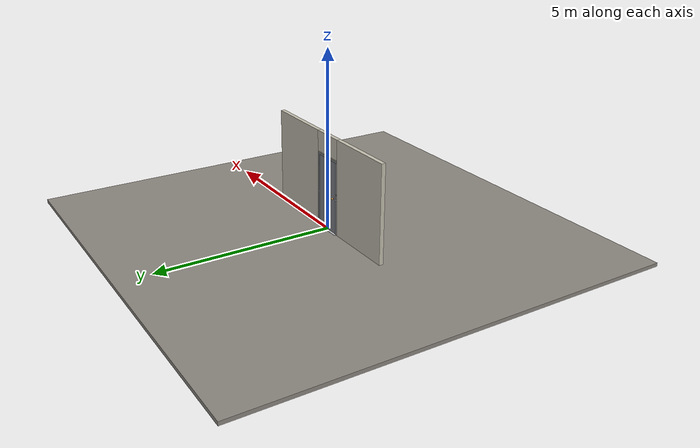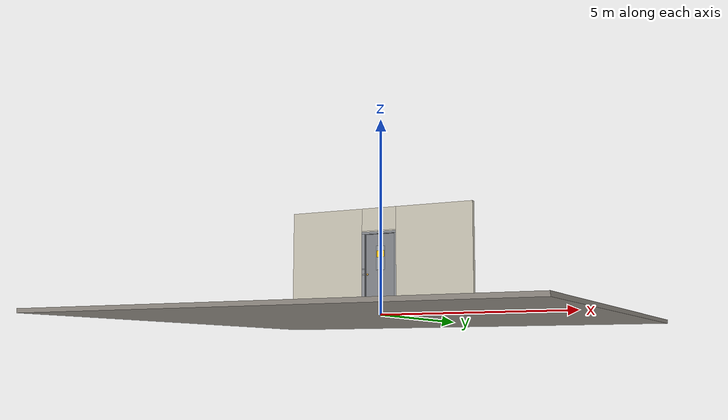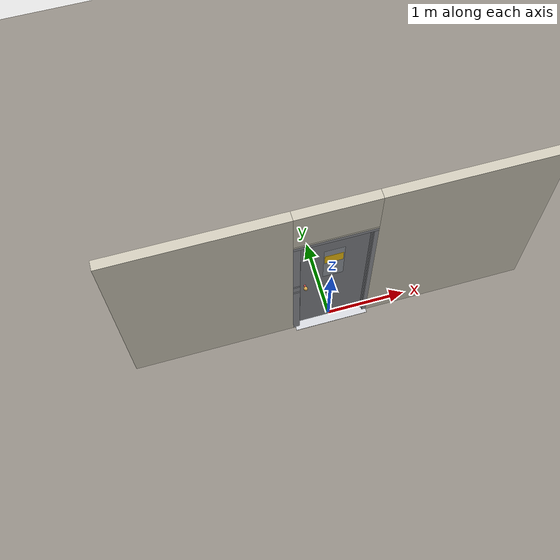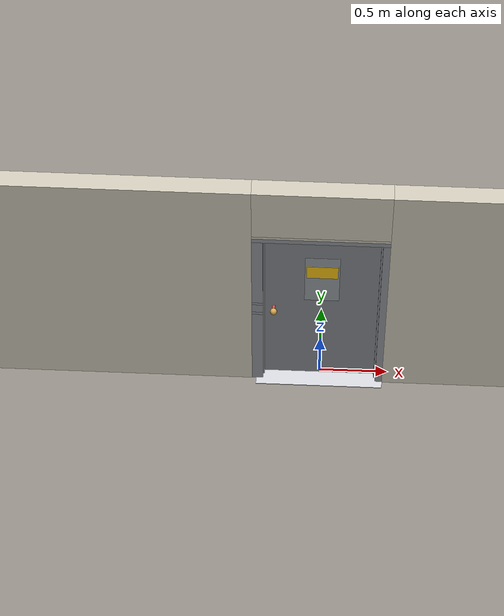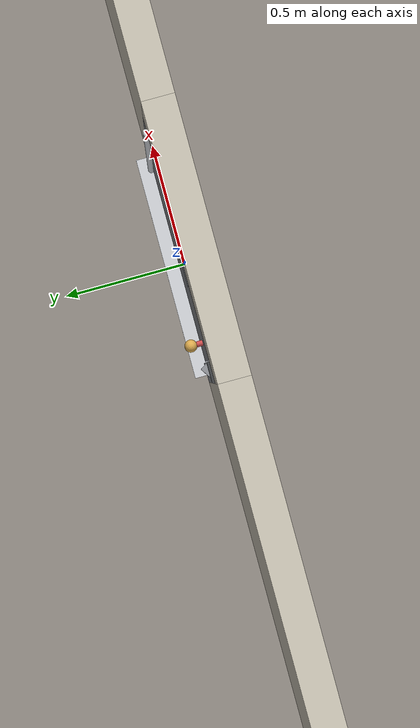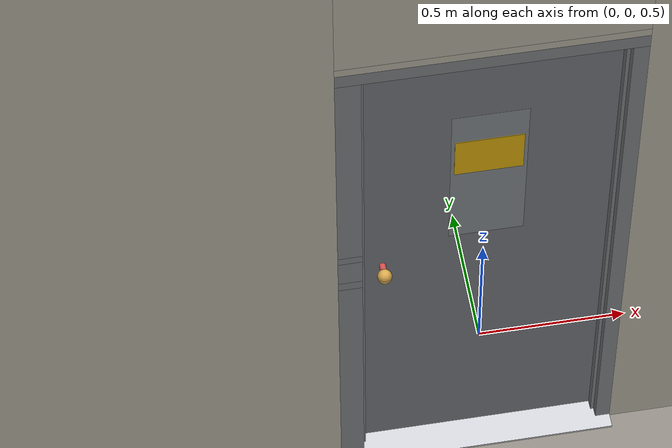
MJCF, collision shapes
<?xml version="1.0" ?>
<mujoco model="db0265_swing_single_full">
  <compiler angle="radian" meshdir="../../hardware" texturedir="../../textures" autolimits="true" inertiafromgeom="false"/>
  <option timestep="0.002" integrator="implicitfast" cone="elliptic" impratio="10" noslip_iterations="3">
    <flag multiccd="enable"/>
  </option>
  <size memory="16M"/>
  <default>
    <geom condim="4" solref="0.005 1" solimp="0.95 0.99 0.001"/>
    <joint solreflimit="0.005 1" solimplimit="0.95 0.99 0.001"/>
    <tendon solreflimit="0.005 1"/>
    <equality solref="0.002 1"/>
  </default>
  <visual>
    <headlight ambient="0.4 0.4 0.4" diffuse="0.7 0.7 0.7" specular="0.2 0.2 0.2"/>
    <quality shadowsize="4096"/>
    <map znear="0.01" zfar="60"/>
  </visual>
  <asset>
    <mesh name="cyl_face_e9e5036966" file="cyl_face_e9e5036966.obj"/>
    <mesh name="knob_d1888f6f03" file="knob_d1888f6f03.obj"/>
    <material name="mat_floor" rgba="0.55 0.53 0.5 1" specular="0.2" shininess="0.15" reflectance="0"/>
    <material name="mat_wall" rgba="0.78 0.76 0.7 1" specular="0.2" shininess="0.1" reflectance="0"/>
    <material name="mat_leaf" rgba="0.5 0.51 0.53 1" specular="0.23" shininess="0.6" reflectance="0.02"/>
    <material name="mat_glass" rgba="0.85 0.92 0.95 0.25" specular="0.2" shininess="0.95" reflectance="0.1"/>
    <material name="mat_hinge" rgba="0.65 0.66 0.68 1" specular="0.74" shininess="0.5" reflectance="0.36"/>
    <material name="mat_op_brass" rgba="0.85 0.66 0.3 1" specular="0.8" shininess="0.75" reflectance="0.4"/>
    <material name="mat_trim" rgba="0.85 0.66 0.3 1" specular="0.8" shininess="0.75" reflectance="0.4"/>
    <material name="mat_bolt" rgba="0.85 0.66 0.3 1" specular="0.8" shininess="0.75" reflectance="0.4"/>
    <material name="mat_deadbolt" rgba="0.85 0.66 0.3 1" specular="0.8" shininess="0.75" reflectance="0.4"/>
    <material name="mat_frame" rgba="0.55 0.56 0.58 1" specular="0.8" shininess="0.55" reflectance="0.4"/>
    <material name="mat_threshold" rgba="0.8 0.81 0.83 1" specular="0.8" shininess="0.6" reflectance="0.4"/>
    <material name="mat_placard" rgba="0.95 0.75 0.05 1" specular="0.2" shininess="0.5" reflectance="0"/>
    <texture name="skybox" type="skybox" builtin="gradient" rgb1="0.6 0.7 0.85" rgb2="0.9 0.92 0.95" width="256" height="256"/>
  </asset>
  <worldbody>
    <light name="sun" pos="1.5 -2.5 4" dir="-0.3 0.5 -0.8" directional="true" diffuse="0.8 0.8 0.8" specular="0.3 0.3 0.3" castshadow="true"/>
    <light name="fill" pos="-1.5 2.5 3" dir="0.3 -0.5 -0.7" directional="true" diffuse="0.35 0.35 0.4" castshadow="false"/>
    <camera name="robot_view" pos="0 -2.570688 1.734312" xyaxes="1 0 0 0 0.26963 0.962964" fovy="52"/>
    <camera name="far_view" pos="0 2.513687 1.734312" xyaxes="-1 0 0 0 -0.26963 0.962964" fovy="52"/>
    <camera name="iso" pos="-1.932062 -2.163938 2.141063" xyaxes="0.741536 -0.670913 0 0.242917 0.268487 0.932151" fovy="46"/>
    <camera name="detail_handle" pos="-0.1555 -0.8685 1.296" xyaxes="0.97561 0.219512 0 -0.070934 0.315262 0.94635" fovy="38"/>
    <geom name="floor" type="box" size="6 6 0.05" pos="0 0 -0.05" material="mat_floor" group="0" contype="1" conaffinity="1" friction="0.8 0.005 0.0001" density="2400"/>
    <geom name="wall_left" type="box" size="1.00475 0.0575 1.35" pos="-1.49525 -0.0285 1.35" material="mat_wall" group="0" contype="1" conaffinity="1" friction="0.6 0.005 0.0001" density="800"/>
    <geom name="wall_right" type="box" size="1.01975 0.0575 1.35" pos="1.48025 -0.0285 1.35" material="mat_wall" group="0" contype="1" conaffinity="1" friction="0.6 0.005 0.0001" density="800"/>
    <geom name="wall_header" type="box" size="0.4755 0.0575 0.2875" pos="-0.015 -0.0285 2.4125" material="mat_wall" group="0" contype="1" conaffinity="1" friction="0.6 0.005 0.0001" density="800"/>
    <geom name="leaf_deadbolt_strike_b" type="box" size="0.0155 0.003 0.0005" pos="-0.41 0 1.1375" quat="0.5 0.5 0.5 0.5" material="mat_deadbolt" group="1" contype="0" conaffinity="0" density="7800"/>
    <geom name="leaf_deadbolt_strike_l" type="box" size="0.003 0.0155 0.0005" pos="-0.41 -0.0125 1.156" quat="0.5 0.5 0.5 0.5" material="mat_deadbolt" group="1" contype="0" conaffinity="0" density="7800"/>
    <geom name="leaf_deadbolt_strike_t" type="box" size="0.0155 0.003 0.0005" pos="-0.41 0 1.1745" quat="0.5 0.5 0.5 0.5" material="mat_deadbolt" group="1" contype="0" conaffinity="0" density="7800"/>
    <geom name="leaf_deadbolt_strike_r" type="box" size="0.003 0.0155 0.0005" pos="-0.41 0.0125 1.156" quat="0.5 0.5 0.5 0.5" material="mat_deadbolt" group="1" contype="0" conaffinity="0" density="7800"/>
    <geom name="jamb_hinge" type="box" size="0.025 0.0575 1.0225" pos="0.4355 -0.0285 1.0225" material="mat_frame" group="0" contype="1" conaffinity="1" friction="0.6 0.005 0.0001" density="300"/>
    <geom name="strike_1016_wall_n" type="box" size="0.04 0.03825 0.0183" pos="-0.4505 -0.04775 1.016" material="mat_frame" group="0" contype="1" conaffinity="1" friction="0.6 0.005 0.0001" density="300"/>
    <geom name="strike_1016_wall_p" type="box" size="0.04 0.008 0.0183" pos="-0.4505 0.0175 1.016" material="mat_frame" group="0" contype="1" conaffinity="1" friction="0.6 0.005 0.0001" density="300"/>
    <geom name="strike_1016_ramp" type="box" size="0.04 0.018028 0.0183" pos="-0.453782 0.018312 1.016" quat="0.957092 0 0 0.289784" material="mat_frame" group="0" contype="1" conaffinity="1" friction="0.12 0.005 0.0001" density="300"/>
    <geom name="strike_1016_back" type="box" size="0.0285 0.0095 0.0183" pos="-0.462 0 1.016" material="mat_frame" group="0" contype="1" conaffinity="1" friction="0.6 0.005 0.0001" density="300"/>
    <geom name="strike_1156_wall_n" type="box" size="0.04 0.03825 0.0155" pos="-0.4505 -0.04775 1.156" material="mat_frame" group="0" contype="1" conaffinity="1" friction="0.6 0.005 0.0001" density="300"/>
    <geom name="strike_1156_wall_p" type="box" size="0.04 0.00975 0.0155" pos="-0.4505 0.01925 1.156" material="mat_frame" group="0" contype="1" conaffinity="1" friction="0.6 0.005 0.0001" density="300"/>
    <geom name="strike_1156_back" type="box" size="0.0253 0.0095 0.0155" pos="-0.4652 0 1.156" material="mat_frame" group="0" contype="1" conaffinity="1" friction="0.6 0.005 0.0001" density="300"/>
    <geom name="jamb_strike_0" type="box" size="0.04 0.0575 0.49885" pos="-0.4505 -0.0285 0.49885" material="mat_frame" group="0" contype="1" conaffinity="1" friction="0.6 0.005 0.0001" density="300"/>
    <geom name="jamb_strike_1" type="box" size="0.04 0.0575 0.0531" pos="-0.4505 -0.0285 1.0874" material="mat_frame" group="0" contype="1" conaffinity="1" friction="0.6 0.005 0.0001" density="300"/>
    <geom name="jamb_strike_2" type="box" size="0.04 0.0575 0.43675" pos="-0.4505 -0.0285 1.60825" material="mat_frame" group="0" contype="1" conaffinity="1" friction="0.6 0.005 0.0001" density="300"/>
    <geom name="jamb_head" type="box" size="0.4755 0.0575 0.025" pos="-0.015 -0.0285 2.07" material="mat_frame" group="0" contype="1" conaffinity="1" friction="0.6 0.005 0.0001" density="300"/>
    <geom name="head_stud" type="box" size="0.4755 0.0575 0.015" pos="-0.015 -0.0285 2.11" material="mat_wall" group="0" contype="1" conaffinity="1" friction="0.6 0.005 0.0001" density="500"/>
    <geom name="stop_hinge" type="box" size="0.0055 0.016 1.0225" pos="0.405 -0.0385 1.0225" material="mat_frame" group="0" contype="1" conaffinity="1" friction="0.6 0.005 0.0001" density="300"/>
    <geom name="stop_strike" type="box" size="0.0055 0.016 1.0225" pos="-0.405 -0.0385 1.0225" material="mat_frame" group="0" contype="1" conaffinity="1" friction="0.6 0.005 0.0001" density="300"/>
    <geom name="stop_head" type="box" size="0.4105 0.016 0.0055" pos="0 -0.0385 2.0395" material="mat_frame" group="0" contype="1" conaffinity="1" friction="0.6 0.005 0.0001" density="300"/>
    <geom name="threshold" type="box" size="0.4605 0.1075 0.004" pos="0 -0.0285 0.004" material="mat_threshold" group="0" contype="1" conaffinity="1" friction="0.6 0.005 0.0001" density="2700"/>
    <site name="approach_point" pos="0 -1.5 0" quat="1 0 0 0" size="0.05" rgba="0.2 0.9 0.2 0.5" group="4"/>
    <site name="goal_point" pos="0 1.5 0" quat="1 0 0 0" size="0.05" rgba="0.2 0.9 0.2 0.5" group="4"/>
    <site name="door_plane_center" pos="0 0 1.0225" quat="1 0 0 0" size="0.02" rgba="0.2 0.9 0.2 0.5" group="4"/>
    <body name="leaf" pos="0.4105 0 0">
      <inertial pos="-0.391262 0.001372 1.025798" mass="69.250184" quat="0.497776 0.502047 -0.497954 0.502204" diaginertia="4.166645604 23.766577762 27.906861175"/>
      <joint name="leaf_hinge" type="hinge" axis="0 0 -1" pos="-0.003 0.029 0" limited="true" range="0 2.443461" damping="0.210326" frictionloss="1.656006" armature="0.02"/>
      <geom name="leaf_slab" type="box" size="0.4065 0.022 1.016" pos="-0.4095 0 1.025" material="mat_leaf" group="0" contype="1" conaffinity="1" friction="0.45 0.005 0.0001" density="1"/>
      <geom name="leaf_glass_0" type="box" size="0.12195 0.0228 0.3048" pos="-0.4095 0 1.4314" material="mat_glass" group="1" contype="0" conaffinity="0" density="1"/>
      <geom name="hinge_continuous" type="cylinder" size="0.0136 1.006" pos="-0.003 0.029 1.025" material="mat_hinge" group="1" contype="0" conaffinity="0" density="2700"/>
      <geom name="leaf_latch_bolt_faceplate" type="box" size="0.0006 0.014 0.0283" pos="-0.8154 0 1.016" material="mat_bolt" group="1" contype="0" conaffinity="0" density="8500"/>
      <geom name="leaf_deadbolt_faceplate" type="box" size="0.0006 0.014 0.0245" pos="-0.8154 0 1.156" material="mat_deadbolt" group="1" contype="0" conaffinity="0" density="8500"/>
      <geom name="leaf_deadbolt_cylinder_face" type="mesh" mesh="cyl_face_e9e5036966" pos="-0.751 0.022 1.156" quat="0 0 0.707107 0.707107" material="mat_deadbolt" group="1" contype="0" conaffinity="0" density="7100"/>
      <geom name="warning_placard" type="box" size="0.11 0.001 0.08" pos="-0.4095 -0.023 1.533" material="mat_placard" group="2" contype="0" conaffinity="0" density="1000"/>
      <site name="leaf_edge_mid" pos="-0.816 0 1.016" quat="1 0 0 0" size="0.02" rgba="0.2 0.9 0.2 0.5" group="4"/>
      <body name="leaf_handle" pos="-0.746 0 1.016">
        <inertial pos="0 0 0" mass="1.151952" quat="0.707107 0 0 -0.707107" diaginertia="0.000312514 0.004264603 0.004264603"/>
        <joint name="leaf_handle_hinge" type="hinge" axis="0 1 0" limited="true" range="0 0.87" damping="0.143614" frictionloss="0.038" stiffness="0.5" springref="-0.5" armature="0.01"/>
        <geom name="leaf_handle_spindle" type="cylinder" size="0.006 0.03" pos="0 0 0" quat="0.707107 -0.707107 0 0" material="mat_op_brass" group="1" contype="0" conaffinity="0" density="7850"/>
        <geom name="leaf_handle_knob_n" type="mesh" mesh="knob_d1888f6f03" pos="0 -0.022 0" quat="0 0 -0.707107 0.707107" material="mat_op_brass" group="1" contype="0" conaffinity="0" density="3000"/>
        <geom name="leaf_handle_knob_col_n" type="sphere" size="0.0243" pos="0 -0.0685 0" material="mat_op_brass" group="0" contype="1" conaffinity="1" friction="0.9 0.01 0.0001" density="3000"/>
        <geom name="leaf_handle_knob_neck_n" type="cylinder" size="0.011 0.012" pos="0 -0.034 0" quat="0.707107 -0.707107 0 0" material="mat_op_brass" group="3" contype="1" conaffinity="1" rgba="0.8 0.3 0.3 0.25" friction="0.6 0.005 0.0001" density="3000"/>
        <geom name="leaf_handle_knob_p" type="mesh" mesh="knob_d1888f6f03" pos="0 0.022 0" quat="0 0 0.707107 0.707107" material="mat_op_brass" group="1" contype="0" conaffinity="0" density="3000"/>
        <geom name="leaf_handle_knob_col_p" type="sphere" size="0.0243" pos="0 0.0685 0" material="mat_op_brass" group="0" contype="1" conaffinity="1" friction="0.9 0.01 0.0001" density="3000"/>
        <geom name="leaf_handle_knob_neck_p" type="cylinder" size="0.011 0.012" pos="0 0.034 0" quat="0.707107 -0.707107 0 0" material="mat_op_brass" group="3" contype="1" conaffinity="1" rgba="0.8 0.3 0.3 0.25" friction="0.6 0.005 0.0001" density="3000"/>
        <site name="leaf_handle_grip_n" pos="0 -0.0685 0" quat="1 0 0 0" size="0.012" rgba="0.2 0.9 0.2 0.5" group="4"/>
        <site name="leaf_handle_grip_p" pos="0 0.0685 0" quat="1 0 0 0" size="0.012" rgba="0.2 0.9 0.2 0.5" group="4"/>
      </body>
      <body name="leaf_latch_bolt" pos="-0.816 0 1.016">
        <inertial pos="0.0055 0 0" mass="0.074627" quat="0.92388 0.382683 0 0" diaginertia="0.000002271 0.000013255 0.000013255"/>
        <joint name="leaf_latch_bolt_slide" type="slide" axis="1 0 0" limited="true" range="0 0.019" damping="2" frictionloss="0.3" stiffness="600" springref="-0.01" armature="0.1"/>
        <geom name="leaf_latch_bolt_capsule" type="capsule" size="0.008 0.0165" pos="0.0055 0 0" quat="0.707107 0 -0.707107 0" material="mat_bolt" group="0" contype="1" conaffinity="1" friction="0.2 0.005 0.0001" density="8500"/>
      </body>
      <body name="leaf_deadbolt" pos="-0.816 0 1.156">
        <inertial pos="0.0023 0 0" mass="0.18836" quat="0 0 0.707107 0.707107" diaginertia="0.000013829 0.000052194 0.000057986"/>
        <geom name="leaf_deadbolt_box" type="box" size="0.0277 0.008 0.0125" pos="0.0023 0 0" material="mat_deadbolt" group="0" contype="1" conaffinity="1" friction="0.3 0.005 0.0001" density="8500"/>
      </body>
    </body>
  </worldbody>
  <tendon>
    <fixed name="leaf_latch_bolt_coupling" limited="true" range="0 10">
      <joint joint="leaf_latch_bolt_slide" coef="1"/>
      <joint joint="leaf_handle_hinge" coef="-0.023457"/>
    </fixed>
  </tendon>
  <sensor>
    <jointpos name="leaf_hinge_pos" joint="leaf_hinge"/>
    <jointvel name="leaf_hinge_vel" joint="leaf_hinge"/>
    <jointpos name="leaf_handle_hinge_pos" joint="leaf_handle_hinge"/>
    <jointvel name="leaf_handle_hinge_vel" joint="leaf_handle_hinge"/>
    <jointpos name="leaf_latch_bolt_slide_pos" joint="leaf_latch_bolt_slide"/>
    <jointvel name="leaf_latch_bolt_slide_vel" joint="leaf_latch_bolt_slide"/>
  </sensor>
</mujoco>
